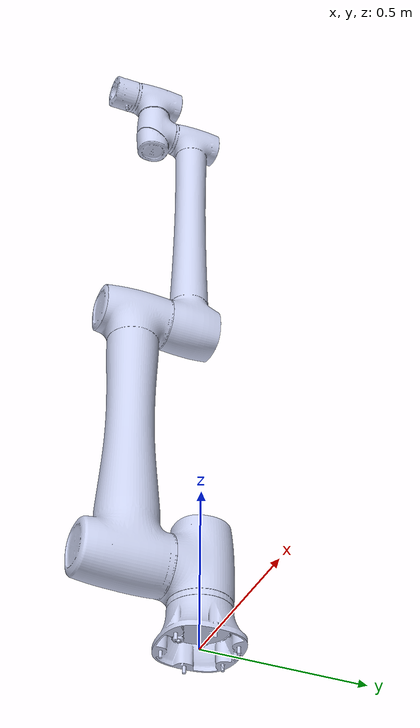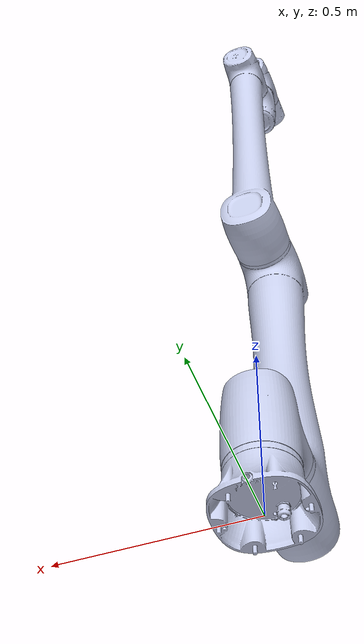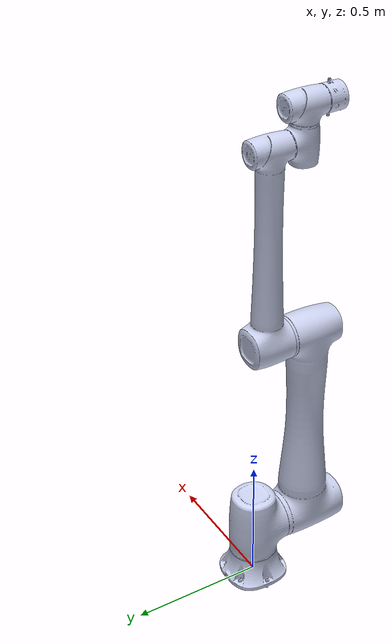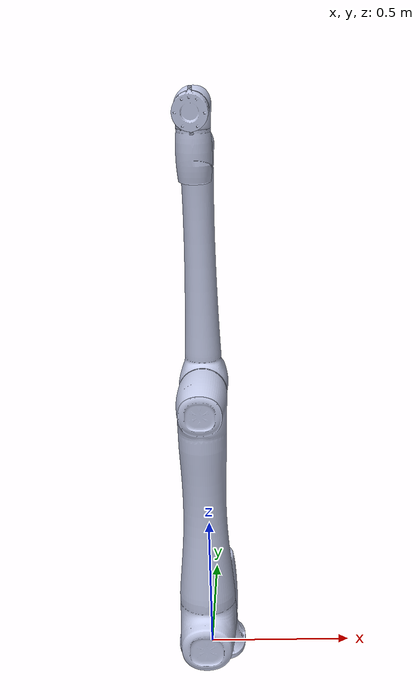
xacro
<?xml version="1.0"?>
<robot xmlns:xacro="http://www.ros.org/wiki/xacro" name="cr20_robot">
    <xacro:arg name="initial_positions_file" default="initial_positions.yaml" />

    <!-- Import cr20_robot urdf file -->
    <xacro:include filename="$(find dobot_rviz)/urdf/cr20_robot.urdf" />

    <!-- Import control_xacro -->
    <xacro:include filename="cr20_robot.ros2_control.xacro" />

    <xacro:cr20_robot_ros2_control name="FakeSystem" initial_positions_file="$(arg initial_positions_file)"/>

</robot>

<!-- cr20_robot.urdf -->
<robot
  name="cr20_robot">
  <link name="dummy_link"/>
  <link
    name="base_link">
    <inertial>
      <origin
        xyz="-0.0523349568972135 0.0899270486094572 -0.00279275668479641"
        rpy="0 0 0" />
      <mass
        value="0.00264393848129463" />
      <inertia
        ixx="2.63085669917301E-07"
        ixy="1.47220694998423E-12"
        ixz="-4.99776904187772E-13"
        iyy="2.63077351102004E-07"
        iyz="6.64647125155247E-12"
        izz="3.34947061010667E-08" />
    </inertial>
    <visual>
      <origin
        xyz="0 0 0"
        rpy="0 0 0" />
      <geometry>
        <mesh
          filename="package://dobot_rviz/meshes/cr20/base_link.STL" />
      </geometry>
      <material
        name="">
        <color
          rgba="0.792156862745098 0.819607843137255 0.933333333333333 1" />
      </material>
    </visual>
    <collision>
      <origin
        xyz="0 0 0"
        rpy="0 0 0" />
      <geometry>
        <mesh
          filename="package://dobot_rviz/meshes/cr20/base_link.STL" />
      </geometry>
    </collision>
  </link>
     <joint name="dummy_joint" type="fixed">
      <parent link="dummy_link" />
      <child  link="base_link" />
    </joint>
  <link
    name="Link1">
    <inertial>
      <origin
        xyz="-0.0154576425326206 -0.0986375365415087 1.04119647925812"
        rpy="0 0 0" />
      <mass
        value="0.00895254328755396" />
      <inertia
        ixx="0.00656545267485594"
        ixy="2.61627160087466E-05"
        ixz="-0.000176276317545974"
        iyy="0.00642372261938276"
        iyz="0.000942662184763422"
        izz="0.000165351996055845" />
    </inertial>
    <visual>
      <origin
        xyz="0 0 0"
        rpy="0 0 0" />
      <geometry>
        <mesh
          filename="package://dobot_rviz/meshes/cr20/Link1.STL" />
      </geometry>
      <material
        name="">
        <color
          rgba="0.792156862745098 0.819607843137255 0.933333333333333 1" />
      </material>
    </visual>
    <collision>
      <origin
        xyz="0 0 0"
        rpy="0 0 0" />
      <geometry>
        <mesh
          filename="package://dobot_rviz/meshes/cr20/Link1.STL" />
      </geometry>
    </collision>
  </link>
  <joint
    name="joint1"
    type="revolute">
    <origin
      xyz="0 0 0.23"
      rpy="0 0 0" />
    <parent
      link="base_link" />
    <child
      link="Link1" />
    <axis
      xyz="0 0 1" />
    <limit
      lower="-6.28"
      upper="6.28"
      effort="0"
      velocity="0" />
  </joint>
  <link
    name="Link2">
    <inertial>
      <origin
        xyz="-0.828898669983325 -3.97165169431493E-07 0.115283168336158"
        rpy="0 0 0" />
      <mass
        value="0.000499668330610696" />
      <inertia
        ixx="6.73534088773015E-07"
        ixy="2.64948768958021E-11"
        ixz="2.5434587974085E-11"
        iyy="7.75340564542921E-07"
        iyz="1.73267473686849E-13"
        izz="1.44870713879534E-06" />
    </inertial>
    <visual>
      <origin
        xyz="0 0 0"
        rpy="0 0 0" />
      <geometry>
        <mesh
          filename="package://dobot_rviz/meshes/cr20/Link2.STL" />
      </geometry>
      <material
        name="">
        <color
          rgba="0.792156862745098 0.819607843137255 0.933333333333333 1" />
      </material>
    </visual>
    <collision>
      <origin
        xyz="0 0 0"
        rpy="0 0 0" />
      <geometry>
        <mesh
          filename="package://dobot_rviz/meshes/cr20/Link2.STL" />
      </geometry>
    </collision>
  </link>
  <joint
    name="joint2"
    type="revolute">
    <origin
      xyz="0 0 0"
      rpy="1.5708 1.5708 0" />
    <parent
      link="Link1" />
    <child
      link="Link2" />
    <axis
      xyz="0 0 1" />
    <limit
      lower="-6.28"
      upper="6.28"
      effort="0"
      velocity="0" />
  </joint>
  <link
    name="Link3">
    <inertial>
      <origin
        xyz="-0.746000007821945 1.07337005127015E-07 0.0757301295800403"
        rpy="0 0 0" />
      <mass
        value="0.00188731016390733" />
      <inertia
        ixx="3.79114597340272E-08"
        ixy="5.05128442103333E-14"
        ixz="8.03416147045283E-14"
        iyy="3.79134627608036E-08"
        iyz="-1.01153352744641E-12"
        izz="3.87049151386638E-09" />
    </inertial>
    <visual>
      <origin
        xyz="0 0 0"
        rpy="0 0 0" />
      <geometry>
        <mesh
          filename="package://dobot_rviz/meshes/cr20/Link3.STL" />
      </geometry>
      <material
        name="">
        <color
          rgba="0.792156862745098 0.819607843137255 0.933333333333333 1" />
      </material>
    </visual>
    <collision>
      <origin
        xyz="0 0 0"
        rpy="0 0 0" />
      <geometry>
        <mesh
          filename="package://dobot_rviz/meshes/cr20/Link3.STL" />
      </geometry>
    </collision>
  </link>
  <joint
    name="joint3"
    type="revolute">
    <origin
      xyz="-0.8252 0 0.0468"
      rpy="0 0 0" />
    <parent
      link="Link2" />
    <child
      link="Link3" />
    <axis
      xyz="0 0 1" />
    <limit
      lower="-2.9"
      upper="2.9"
      effort="0"
      velocity="0" />
  </joint>
  <link
    name="Link4">
    <inertial>
      <origin
        xyz="1.09076486456641E-07 -0.0757301256894509 1.20551504334543E-08"
        rpy="0 0 0" />
      <mass
        value="0.00188731016585712" />
      <inertia
        ixx="3.79134628577777E-08"
        ixy="1.01184192479681E-12"
        ixz="-5.05129118471948E-14"
        iyy="3.87049151623302E-09"
        iyz="8.21600288081392E-14"
        izz="3.79114598310077E-08" />
    </inertial>
    <visual>
      <origin
        xyz="0 0 0"
        rpy="0 0 0" />
      <geometry>
        <mesh
          filename="package://dobot_rviz/meshes/cr20/Link4.STL" />
      </geometry>
      <material
        name="">
        <color
          rgba="0.792156862745098 0.819607843137255 0.933333333333333 1" />
      </material>
    </visual>
    <collision>
      <origin
        xyz="0 0 0"
        rpy="0 0 0" />
      <geometry>
        <mesh
          filename="package://dobot_rviz/meshes/cr20/Link4.STL" />
      </geometry>
    </collision>
  </link>
  <joint
    name="joint4"
    type="revolute">
    <origin
      xyz="-0.746 0 0.1288"
      rpy="0 0 -1.5708" />
    <parent
      link="Link3" />
    <child
      link="Link4" />
    <axis
      xyz="0 0 1" />
    <limit
      lower="-6.28"
      upper="6.28"
      effort="0"
      velocity="0" />
  </joint>
  <link
    name="Link5">
    <inertial>
      <origin
        xyz="-1.06334234349293E-07 0.075730132822537 4.0368623999143E-09"
        rpy="0 0 0" />
      <mass
        value="0.00188731016390721" />
      <inertia
        ixx="3.79134627608001E-08"
        ixy="1.0115335284123E-12"
        ixz="5.0512851462219E-14"
        iyy="3.87049151386614E-09"
        iyz="-8.03416106628584E-14"
        izz="3.79114597340245E-08" />
    </inertial>
    <visual>
      <origin
        xyz="0 0 0"
        rpy="0 0 0" />
      <geometry>
        <mesh
          filename="package://dobot_rviz/meshes/cr20/Link5.STL" />
      </geometry>
      <material
        name="">
        <color
          rgba="0.792156862745098 0.819607843137255 0.933333333333333 1" />
      </material>
    </visual>
    <collision>
      <origin
        xyz="0 0 0"
        rpy="0 0 0" />
      <geometry>
        <mesh
          filename="package://dobot_rviz/meshes/cr20/Link5.STL" />
      </geometry>
    </collision>
  </link>
  <joint
    name="joint5"
    type="revolute">
    <origin
      xyz="0 -0.1288 0"
      rpy="1.5708 0 0" />
    <parent
      link="Link4" />
    <child
      link="Link5" />
    <axis
      xyz="0 0 1" />
    <limit
      lower="-6.28"
      upper="6.28"
      effort="0"
      velocity="0" />
  </joint>
  <link
    name="Link6">
    <inertial>
      <origin
        xyz="0.0154576401891996 0.658802608062882 -0.213462466800391"
        rpy="0 0 0" />
      <mass
        value="0.00895254328755396" />
      <inertia
        ixx="0.00656545267485594"
        ixy="-0.000176276317545974"
        ixz="2.61627160087466E-05"
        iyy="0.000165351996055845"
        iyz="0.000942662184763421"
        izz="0.00642372261938276" />
    </inertial>
    <visual>
      <origin
        xyz="0 0 0"
        rpy="0 0 0" />
      <geometry>
        <mesh
          filename="package://dobot_rviz/meshes/cr20/Link6.STL" />
      </geometry>
      <material
        name="">
        <color
          rgba="0.792156862745098 0.819607843137255 0.933333333333333 1" />
      </material>
    </visual>
    <collision>
      <origin
        xyz="0 0 0"
        rpy="0 0 0" />
      <geometry>
        <mesh
          filename="package://dobot_rviz/meshes/cr20/Link6.STL" />
      </geometry>
    </collision>
  </link>
  <joint
    name="joint6"
    type="revolute">
    <origin
      xyz="0 0.1365 0"
      rpy="-1.5708 0 0" />
    <parent
      link="Link5" />
    <child
      link="Link6" />
    <axis
      xyz="0 0 1" />
    <limit
      lower="-6.28"
      upper="6.28"
      effort="0"
      velocity="0" />
  </joint>
</robot>
